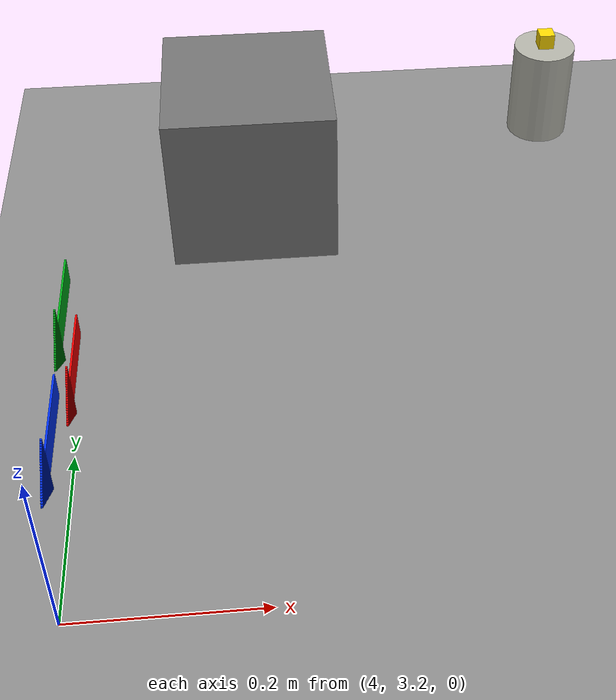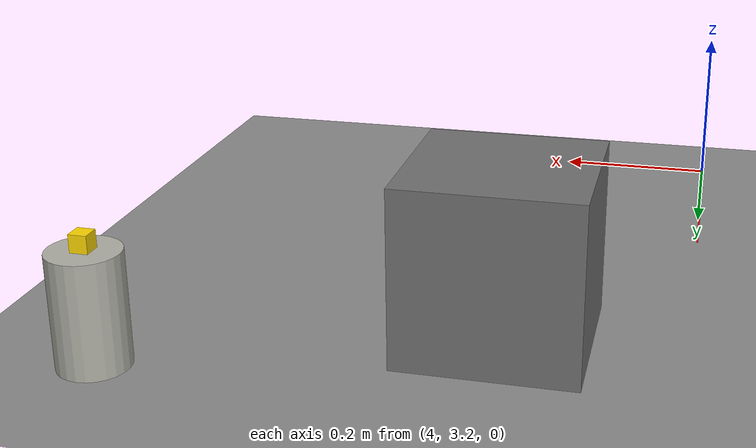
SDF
<sdf version="1.9">
 <world name="ros2_world">
  <model name="ground_plane">
   <static>true</static>
   <link name="link">
    <collision name="collision">
     <geometry><plane><normal>0 0 1</normal><size>30 30</size></plane></geometry>
    </collision>
    <visual name="visual">
     <geometry><plane><normal>0 0 1</normal><size>30 30</size></plane></geometry>
     <material><ambient>0.55 0.55 0.55 1</ambient><diffuse>0.55 0.55 0.55 1</diffuse></material>
    </visual>
   </link>
  </model>
  <model name="flechas">
   <static>true</static>
   <link name="flecha_3">
    <pose>3.9985 3.32 0.115 0 0 -1.5708</pose>
    <visual name="p0">
     <pose>-0.025 0 0 0 0 0</pose>
     <geometry><box><size>0.1 0.002 0.03</size></box></geometry>
     <material><ambient>0 0.2 1 1</ambient><diffuse>0 0.2 1 1</diffuse></material>
    </visual>
    <visual name="p1">
     <pose>0.026 0 0 0 0 0</pose>
     <geometry><box><size>0.002 0.002 0.07</size></box></geometry>
     <material><ambient>0 0.2 1 1</ambient><diffuse>0 0.2 1 1</diffuse></material>
    </visual>
    <visual name="p2">
     <pose>0.028 0 0 0 0 0</pose>
     <geometry><box><size>0.002 0.002 0.0672</size></box></geometry>
     <material><ambient>0 0.2 1 1</ambient><diffuse>0 0.2 1 1</diffuse></material>
    </visual>
    <visual name="p3">
     <pose>0.03 0 0 0 0 0</pose>
     <geometry><box><size>0.002 0.002 0.0644</size></box></geometry>
     <material><ambient>0 0.2 1 1</ambient><diffuse>0 0.2 1 1</diffuse></material>
    </visual>
    <visual name="p4">
     <pose>0.032 0 0 0 0 0</pose>
     <geometry><box><size>0.002 0.002 0.0616</size></box></geometry>
     <material><ambient>0 0.2 1 1</ambient><diffuse>0 0.2 1 1</diffuse></material>
    </visual>
    <visual name="p5">
     <pose>0.034 0 0 0 0 0</pose>
     <geometry><box><size>0.002 0.002 0.0588</size></box></geometry>
     <material><ambient>0 0.2 1 1</ambient><diffuse>0 0.2 1 1</diffuse></material>
    </visual>
    <visual name="p6">
     <pose>0.036 0 0 0 0 0</pose>
     <geometry><box><size>0.002 0.002 0.056</size></box></geometry>
     <material><ambient>0 0.2 1 1</ambient><diffuse>0 0.2 1 1</diffuse></material>
    </visual>
    <visual name="p7">
     <pose>0.038 0 0 0 0 0</pose>
     <geometry><box><size>0.002 0.002 0.0532</size></box></geometry>
     <material><ambient>0 0.2 1 1</ambient><diffuse>0 0.2 1 1</diffuse></material>
    </visual>
    <visual name="p8">
     <pose>0.04 0 0 0 0 0</pose>
     <geometry><box><size>0.002 0.002 0.0504</size></box></geometry>
     <material><ambient>0 0.2 1 1</ambient><diffuse>0 0.2 1 1</diffuse></material>
    </visual>
    <visual name="p9">
     <pose>0.042 0 0 0 0 0</pose>
     <geometry><box><size>0.002 0.002 0.0476</size></box></geometry>
     <material><ambient>0 0.2 1 1</ambient><diffuse>0 0.2 1 1</diffuse></material>
    </visual>
    <visual name="p10">
     <pose>0.044 0 0 0 0 0</pose>
     <geometry><box><size>0.002 0.002 0.0448</size></box></geometry>
     <material><ambient>0 0.2 1 1</ambient><diffuse>0 0.2 1 1</diffuse></material>
    </visual>
    <visual name="p11">
     <pose>0.046 0 0 0 0 0</pose>
     <geometry><box><size>0.002 0.002 0.042</size></box></geometry>
     <material><ambient>0 0.2 1 1</ambient><diffuse>0 0.2 1 1</diffuse></material>
    </visual>
    <visual name="p12">
     <pose>0.048 0 0 0 0 0</pose>
     <geometry><box><size>0.002 0.002 0.0392</size></box></geometry>
     <material><ambient>0 0.2 1 1</ambient><diffuse>0 0.2 1 1</diffuse></material>
    </visual>
    <visual name="p13">
     <pose>0.05 0 0 0 0 0</pose>
     <geometry><box><size>0.002 0.002 0.0364</size></box></geometry>
     <material><ambient>0 0.2 1 1</ambient><diffuse>0 0.2 1 1</diffuse></material>
    </visual>
    <visual name="p14">
     <pose>0.052 0 0 0 0 0</pose>
     <geometry><box><size>0.002 0.002 0.0336</size></box></geometry>
     <material><ambient>0 0.2 1 1</ambient><diffuse>0 0.2 1 1</diffuse></material>
    </visual>
    <visual name="p15">
     <pose>0.054 0 0 0 0 0</pose>
     <geometry><box><size>0.002 0.002 0.0308</size></box></geometry>
     <material><ambient>0 0.2 1 1</ambient><diffuse>0 0.2 1 1</diffuse></material>
    </visual>
    <visual name="p16">
     <pose>0.056 0 0 0 0 0</pose>
     <geometry><box><size>0.002 0.002 0.028</size></box></geometry>
     <material><ambient>0 0.2 1 1</ambient><diffuse>0 0.2 1 1</diffuse></material>
    </visual>
    <visual name="p17">
     <pose>0.058 0 0 0 0 0</pose>
     <geometry><box><size>0.002 0.002 0.0252</size></box></geometry>
     <material><ambient>0 0.2 1 1</ambient><diffuse>0 0.2 1 1</diffuse></material>
    </visual>
    <visual name="p18">
     <pose>0.06 0 0 0 0 0</pose>
     <geometry><box><size>0.002 0.002 0.0224</size></box></geometry>
     <material><ambient>0 0.2 1 1</ambient><diffuse>0 0.2 1 1</diffuse></material>
    </visual>
    <visual name="p19">
     <pose>0.062 0 0 0 0 0</pose>
     <geometry><box><size>0.002 0.002 0.0196</size></box></geometry>
     <material><ambient>0 0.2 1 1</ambient><diffuse>0 0.2 1 1</diffuse></material>
    </visual>
    <visual name="p20">
     <pose>0.064 0 0 0 0 0</pose>
     <geometry><box><size>0.002 0.002 0.0168</size></box></geometry>
     <material><ambient>0 0.2 1 1</ambient><diffuse>0 0.2 1 1</diffuse></material>
    </visual>
    <visual name="p21">
     <pose>0.066 0 0 0 0 0</pose>
     <geometry><box><size>0.002 0.002 0.014</size></box></geometry>
     <material><ambient>0 0.2 1 1</ambient><diffuse>0 0.2 1 1</diffuse></material>
    </visual>
    <visual name="p22">
     <pose>0.068 0 0 0 0 0</pose>
     <geometry><box><size>0.002 0.002 0.0112</size></box></geometry>
     <material><ambient>0 0.2 1 1</ambient><diffuse>0 0.2 1 1</diffuse></material>
    </visual>
    <visual name="p23">
     <pose>0.07 0 0 0 0 0</pose>
     <geometry><box><size>0.002 0.002 0.0084</size></box></geometry>
     <material><ambient>0 0.2 1 1</ambient><diffuse>0 0.2 1 1</diffuse></material>
    </visual>
    <visual name="p24">
     <pose>0.072 0 0 0 0 0</pose>
     <geometry><box><size>0.002 0.002 0.0056</size></box></geometry>
     <material><ambient>0 0.2 1 1</ambient><diffuse>0 0.2 1 1</diffuse></material>
    </visual>
    <visual name="p25">
     <pose>0.074 0 0 0 0 0</pose>
     <geometry><box><size>0.002 0.002 0.0028</size></box></geometry>
     <material><ambient>0 0.2 1 1</ambient><diffuse>0 0.2 1 1</diffuse></material>
    </visual>
   </link>
   <link name="flecha_4">
    <pose>3.9985 3.48 0.125 0 0 -1.5708</pose>
    <visual name="p0">
     <pose>-0.025 0 0 0 0 0</pose>
     <geometry><box><size>0.1 0.002 0.03</size></box></geometry>
     <material><ambient>0 0.7 0.1 1</ambient><diffuse>0 0.7 0.1 1</diffuse></material>
    </visual>
    <visual name="p1">
     <pose>0.026 0 0 0 0 0</pose>
     <geometry><box><size>0.002 0.002 0.07</size></box></geometry>
     <material><ambient>0 0.7 0.1 1</ambient><diffuse>0 0.7 0.1 1</diffuse></material>
    </visual>
    <visual name="p2">
     <pose>0.028 0 0 0 0 0</pose>
     <geometry><box><size>0.002 0.002 0.0672</size></box></geometry>
     <material><ambient>0 0.7 0.1 1</ambient><diffuse>0 0.7 0.1 1</diffuse></material>
    </visual>
    <visual name="p3">
     <pose>0.03 0 0 0 0 0</pose>
     <geometry><box><size>0.002 0.002 0.0644</size></box></geometry>
     <material><ambient>0 0.7 0.1 1</ambient><diffuse>0 0.7 0.1 1</diffuse></material>
    </visual>
    <visual name="p4">
     <pose>0.032 0 0 0 0 0</pose>
     <geometry><box><size>0.002 0.002 0.0616</size></box></geometry>
     <material><ambient>0 0.7 0.1 1</ambient><diffuse>0 0.7 0.1 1</diffuse></material>
    </visual>
    <visual name="p5">
     <pose>0.034 0 0 0 0 0</pose>
     <geometry><box><size>0.002 0.002 0.0588</size></box></geometry>
     <material><ambient>0 0.7 0.1 1</ambient><diffuse>0 0.7 0.1 1</diffuse></material>
    </visual>
    <visual name="p6">
     <pose>0.036 0 0 0 0 0</pose>
     <geometry><box><size>0.002 0.002 0.056</size></box></geometry>
     <material><ambient>0 0.7 0.1 1</ambient><diffuse>0 0.7 0.1 1</diffuse></material>
    </visual>
    <visual name="p7">
     <pose>0.038 0 0 0 0 0</pose>
     <geometry><box><size>0.002 0.002 0.0532</size></box></geometry>
     <material><ambient>0 0.7 0.1 1</ambient><diffuse>0 0.7 0.1 1</diffuse></material>
    </visual>
    <visual name="p8">
     <pose>0.04 0 0 0 0 0</pose>
     <geometry><box><size>0.002 0.002 0.0504</size></box></geometry>
     <material><ambient>0 0.7 0.1 1</ambient><diffuse>0 0.7 0.1 1</diffuse></material>
    </visual>
    <visual name="p9">
     <pose>0.042 0 0 0 0 0</pose>
     <geometry><box><size>0.002 0.002 0.0476</size></box></geometry>
     <material><ambient>0 0.7 0.1 1</ambient><diffuse>0 0.7 0.1 1</diffuse></material>
    </visual>
    <visual name="p10">
     <pose>0.044 0 0 0 0 0</pose>
     <geometry><box><size>0.002 0.002 0.0448</size></box></geometry>
     <material><ambient>0 0.7 0.1 1</ambient><diffuse>0 0.7 0.1 1</diffuse></material>
    </visual>
    <visual name="p11">
     <pose>0.046 0 0 0 0 0</pose>
     <geometry><box><size>0.002 0.002 0.042</size></box></geometry>
     <material><ambient>0 0.7 0.1 1</ambient><diffuse>0 0.7 0.1 1</diffuse></material>
    </visual>
    <visual name="p12">
     <pose>0.048 0 0 0 0 0</pose>
     <geometry><box><size>0.002 0.002 0.0392</size></box></geometry>
     <material><ambient>0 0.7 0.1 1</ambient><diffuse>0 0.7 0.1 1</diffuse></material>
    </visual>
    <visual name="p13">
     <pose>0.05 0 0 0 0 0</pose>
     <geometry><box><size>0.002 0.002 0.0364</size></box></geometry>
     <material><ambient>0 0.7 0.1 1</ambient><diffuse>0 0.7 0.1 1</diffuse></material>
    </visual>
    <visual name="p14">
     <pose>0.052 0 0 0 0 0</pose>
     <geometry><box><size>0.002 0.002 0.0336</size></box></geometry>
     <material><ambient>0 0.7 0.1 1</ambient><diffuse>0 0.7 0.1 1</diffuse></material>
    </visual>
    <visual name="p15">
     <pose>0.054 0 0 0 0 0</pose>
     <geometry><box><size>0.002 0.002 0.0308</size></box></geometry>
     <material><ambient>0 0.7 0.1 1</ambient><diffuse>0 0.7 0.1 1</diffuse></material>
    </visual>
    <visual name="p16">
     <pose>0.056 0 0 0 0 0</pose>
     <geometry><box><size>0.002 0.002 0.028</size></box></geometry>
     <material><ambient>0 0.7 0.1 1</ambient><diffuse>0 0.7 0.1 1</diffuse></material>
    </visual>
    <visual name="p17">
     <pose>0.058 0 0 0 0 0</pose>
     <geometry><box><size>0.002 0.002 0.0252</size></box></geometry>
     <material><ambient>0 0.7 0.1 1</ambient><diffuse>0 0.7 0.1 1</diffuse></material>
    </visual>
    <visual name="p18">
     <pose>0.06 0 0 0 0 0</pose>
     <geometry><box><size>0.002 0.002 0.0224</size></box></geometry>
     <material><ambient>0 0.7 0.1 1</ambient><diffuse>0 0.7 0.1 1</diffuse></material>
    </visual>
    <visual name="p19">
     <pose>0.062 0 0 0 0 0</pose>
     <geometry><box><size>0.002 0.002 0.0196</size></box></geometry>
     <material><ambient>0 0.7 0.1 1</ambient><diffuse>0 0.7 0.1 1</diffuse></material>
    </visual>
    <visual name="p20">
     <pose>0.064 0 0 0 0 0</pose>
     <geometry><box><size>0.002 0.002 0.0168</size></box></geometry>
     <material><ambient>0 0.7 0.1 1</ambient><diffuse>0 0.7 0.1 1</diffuse></material>
    </visual>
    <visual name="p21">
     <pose>0.066 0 0 0 0 0</pose>
     <geometry><box><size>0.002 0.002 0.014</size></box></geometry>
     <material><ambient>0 0.7 0.1 1</ambient><diffuse>0 0.7 0.1 1</diffuse></material>
    </visual>
    <visual name="p22">
     <pose>0.068 0 0 0 0 0</pose>
     <geometry><box><size>0.002 0.002 0.0112</size></box></geometry>
     <material><ambient>0 0.7 0.1 1</ambient><diffuse>0 0.7 0.1 1</diffuse></material>
    </visual>
    <visual name="p23">
     <pose>0.07 0 0 0 0 0</pose>
     <geometry><box><size>0.002 0.002 0.0084</size></box></geometry>
     <material><ambient>0 0.7 0.1 1</ambient><diffuse>0 0.7 0.1 1</diffuse></material>
    </visual>
    <visual name="p24">
     <pose>0.072 0 0 0 0 0</pose>
     <geometry><box><size>0.002 0.002 0.0056</size></box></geometry>
     <material><ambient>0 0.7 0.1 1</ambient><diffuse>0 0.7 0.1 1</diffuse></material>
    </visual>
    <visual name="p25">
     <pose>0.074 0 0 0 0 0</pose>
     <geometry><box><size>0.002 0.002 0.0028</size></box></geometry>
     <material><ambient>0 0.7 0.1 1</ambient><diffuse>0 0.7 0.1 1</diffuse></material>
    </visual>
   </link>
   <link name="flecha_5">
    <pose>3.9985 3.48 0.045 0 0 -1.5708</pose>
    <visual name="p0">
     <pose>-0.025 0 0 0 0 0</pose>
     <geometry><box><size>0.1 0.002 0.03</size></box></geometry>
     <material><ambient>1 0 0 1</ambient><diffuse>1 0 0 1</diffuse></material>
    </visual>
    <visual name="p1">
     <pose>0.026 0 0 0 0 0</pose>
     <geometry><box><size>0.002 0.002 0.07</size></box></geometry>
     <material><ambient>1 0 0 1</ambient><diffuse>1 0 0 1</diffuse></material>
    </visual>
    <visual name="p2">
     <pose>0.028 0 0 0 0 0</pose>
     <geometry><box><size>0.002 0.002 0.0672</size></box></geometry>
     <material><ambient>1 0 0 1</ambient><diffuse>1 0 0 1</diffuse></material>
    </visual>
    <visual name="p3">
     <pose>0.03 0 0 0 0 0</pose>
     <geometry><box><size>0.002 0.002 0.0644</size></box></geometry>
     <material><ambient>1 0 0 1</ambient><diffuse>1 0 0 1</diffuse></material>
    </visual>
    <visual name="p4">
     <pose>0.032 0 0 0 0 0</pose>
     <geometry><box><size>0.002 0.002 0.0616</size></box></geometry>
     <material><ambient>1 0 0 1</ambient><diffuse>1 0 0 1</diffuse></material>
    </visual>
    <visual name="p5">
     <pose>0.034 0 0 0 0 0</pose>
     <geometry><box><size>0.002 0.002 0.0588</size></box></geometry>
     <material><ambient>1 0 0 1</ambient><diffuse>1 0 0 1</diffuse></material>
    </visual>
    <visual name="p6">
     <pose>0.036 0 0 0 0 0</pose>
     <geometry><box><size>0.002 0.002 0.056</size></box></geometry>
     <material><ambient>1 0 0 1</ambient><diffuse>1 0 0 1</diffuse></material>
    </visual>
    <visual name="p7">
     <pose>0.038 0 0 0 0 0</pose>
     <geometry><box><size>0.002 0.002 0.0532</size></box></geometry>
     <material><ambient>1 0 0 1</ambient><diffuse>1 0 0 1</diffuse></material>
    </visual>
    <visual name="p8">
     <pose>0.04 0 0 0 0 0</pose>
     <geometry><box><size>0.002 0.002 0.0504</size></box></geometry>
     <material><ambient>1 0 0 1</ambient><diffuse>1 0 0 1</diffuse></material>
    </visual>
    <visual name="p9">
     <pose>0.042 0 0 0 0 0</pose>
     <geometry><box><size>0.002 0.002 0.0476</size></box></geometry>
     <material><ambient>1 0 0 1</ambient><diffuse>1 0 0 1</diffuse></material>
    </visual>
    <visual name="p10">
     <pose>0.044 0 0 0 0 0</pose>
     <geometry><box><size>0.002 0.002 0.0448</size></box></geometry>
     <material><ambient>1 0 0 1</ambient><diffuse>1 0 0 1</diffuse></material>
    </visual>
    <visual name="p11">
     <pose>0.046 0 0 0 0 0</pose>
     <geometry><box><size>0.002 0.002 0.042</size></box></geometry>
     <material><ambient>1 0 0 1</ambient><diffuse>1 0 0 1</diffuse></material>
    </visual>
    <visual name="p12">
     <pose>0.048 0 0 0 0 0</pose>
     <geometry><box><size>0.002 0.002 0.0392</size></box></geometry>
     <material><ambient>1 0 0 1</ambient><diffuse>1 0 0 1</diffuse></material>
    </visual>
    <visual name="p13">
     <pose>0.05 0 0 0 0 0</pose>
     <geometry><box><size>0.002 0.002 0.0364</size></box></geometry>
     <material><ambient>1 0 0 1</ambient><diffuse>1 0 0 1</diffuse></material>
    </visual>
    <visual name="p14">
     <pose>0.052 0 0 0 0 0</pose>
     <geometry><box><size>0.002 0.002 0.0336</size></box></geometry>
     <material><ambient>1 0 0 1</ambient><diffuse>1 0 0 1</diffuse></material>
    </visual>
    <visual name="p15">
     <pose>0.054 0 0 0 0 0</pose>
     <geometry><box><size>0.002 0.002 0.0308</size></box></geometry>
     <material><ambient>1 0 0 1</ambient><diffuse>1 0 0 1</diffuse></material>
    </visual>
    <visual name="p16">
     <pose>0.056 0 0 0 0 0</pose>
     <geometry><box><size>0.002 0.002 0.028</size></box></geometry>
     <material><ambient>1 0 0 1</ambient><diffuse>1 0 0 1</diffuse></material>
    </visual>
    <visual name="p17">
     <pose>0.058 0 0 0 0 0</pose>
     <geometry><box><size>0.002 0.002 0.0252</size></box></geometry>
     <material><ambient>1 0 0 1</ambient><diffuse>1 0 0 1</diffuse></material>
    </visual>
    <visual name="p18">
     <pose>0.06 0 0 0 0 0</pose>
     <geometry><box><size>0.002 0.002 0.0224</size></box></geometry>
     <material><ambient>1 0 0 1</ambient><diffuse>1 0 0 1</diffuse></material>
    </visual>
    <visual name="p19">
     <pose>0.062 0 0 0 0 0</pose>
     <geometry><box><size>0.002 0.002 0.0196</size></box></geometry>
     <material><ambient>1 0 0 1</ambient><diffuse>1 0 0 1</diffuse></material>
    </visual>
    <visual name="p20">
     <pose>0.064 0 0 0 0 0</pose>
     <geometry><box><size>0.002 0.002 0.0168</size></box></geometry>
     <material><ambient>1 0 0 1</ambient><diffuse>1 0 0 1</diffuse></material>
    </visual>
    <visual name="p21">
     <pose>0.066 0 0 0 0 0</pose>
     <geometry><box><size>0.002 0.002 0.014</size></box></geometry>
     <material><ambient>1 0 0 1</ambient><diffuse>1 0 0 1</diffuse></material>
    </visual>
    <visual name="p22">
     <pose>0.068 0 0 0 0 0</pose>
     <geometry><box><size>0.002 0.002 0.0112</size></box></geometry>
     <material><ambient>1 0 0 1</ambient><diffuse>1 0 0 1</diffuse></material>
    </visual>
    <visual name="p23">
     <pose>0.07 0 0 0 0 0</pose>
     <geometry><box><size>0.002 0.002 0.0084</size></box></geometry>
     <material><ambient>1 0 0 1</ambient><diffuse>1 0 0 1</diffuse></material>
    </visual>
    <visual name="p24">
     <pose>0.072 0 0 0 0 0</pose>
     <geometry><box><size>0.002 0.002 0.0056</size></box></geometry>
     <material><ambient>1 0 0 1</ambient><diffuse>1 0 0 1</diffuse></material>
    </visual>
    <visual name="p25">
     <pose>0.074 0 0 0 0 0</pose>
     <geometry><box><size>0.002 0.002 0.0028</size></box></geometry>
     <material><ambient>1 0 0 1</ambient><diffuse>1 0 0 1</diffuse></material>
    </visual>
   </link>
  </model>
  <model name="soporte_distractor_5">
   <static>true</static>
   <pose>4.6 3.955 0.06425 0 0 0</pose>
   <link name="link">
    <collision name="colision">
     <geometry><cylinder><radius>0.04</radius><length>0.1285</length></cylinder></geometry>
    </collision>
    <visual name="visual">
     <geometry><cylinder><radius>0.04</radius><length>0.1285</length></cylinder></geometry>
     <material><ambient>0.7 0.7 0.66 1</ambient><diffuse>0.7 0.7 0.66 1</diffuse></material>
    </visual>
   </link>
  </model>
  <model name="distractor_amarillo_5">
   <pose>4.6 3.955 0.1387 0 0 0</pose>
   <link name="link">
    <inertial>
     <mass>0.0099</mass>
     <inertia>
      <ixx>6.6000e-07</ixx>
      <iyy>6.6000e-07</iyy>
      <izz>6.6000e-07</izz>
      <ixy>0</ixy>
      <ixz>0</ixz>
      <iyz>0</iyz>
     </inertia>
    </inertial>
    <collision name="colision">
     <geometry><box><size>0.02 0.02 0.02</size></box></geometry>
     <surface><friction><ode><mu>1</mu><mu2>1</mu2></ode></friction></surface>
    </collision>
    <visual name="visual">
     <geometry><box><size>0.02 0.02 0.02</size></box></geometry>
     <material><ambient>1 0.85 0 1</ambient><diffuse>1 0.85 0 1</diffuse></material>
    </visual>
   </link>
  </model>
  <model name="bloque_20cm_6">
   <static>true</static>
   <pose>4.2 3.8 0.1 0 0 0</pose>
   <link name="link">
    <collision name="colision"><geometry><box><size>0.2 0.2 0.2</size></box></geometry></collision>
    <visual name="visual">
     <geometry><box><size>0.2 0.2 0.2</size></box></geometry>
     <material><ambient>0.45 0.45 0.45 1</ambient><diffuse>0.45 0.45 0.45 1</diffuse></material>
    </visual>
   </link>
  </model>
 </world>
</sdf>
